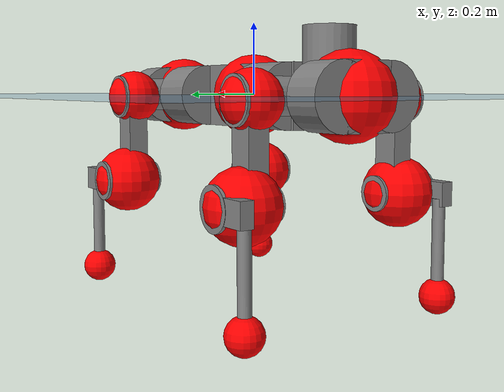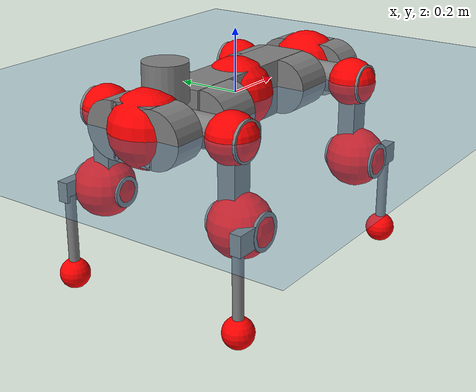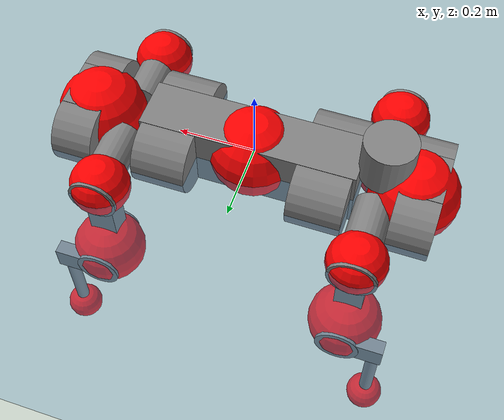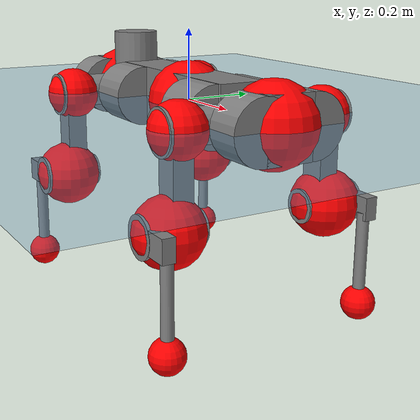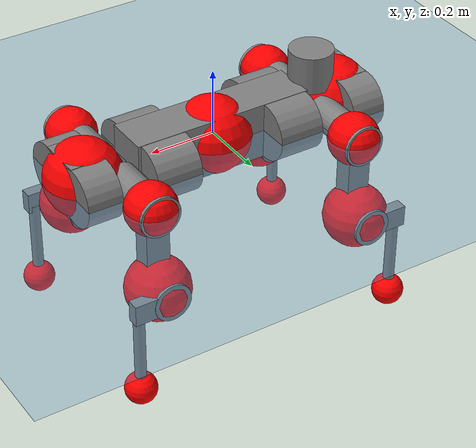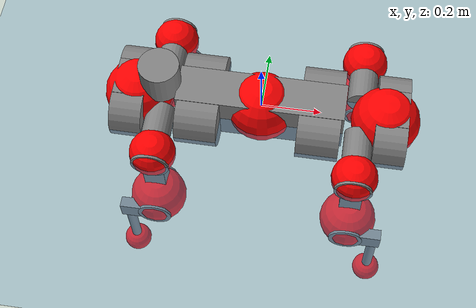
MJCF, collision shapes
<mujoco model="anymal_c">
  <compiler angle="radian" assetdir="assets" balanceinertia="true" inertiafromgeom="false"/>

  <option timestep="0.005" density="1.2" viscosity="2e-05"/>

  <size nkey="1"/>

  <visual>
    <quality shadowsize="8192"/>
    <map shadowclip="0.5"/>
  </visual>

  <default>
    <default class="/">
      <material specular="0" shininess="0.25"/>
      <geom contype="0" conaffinity="0" group="1" solref="-1000 -80"/>
      <site size="0.01 0.005 0.005" group="5"/>
      <general forcelimited="true" forcerange="-80 80" biastype="affine" gainprm="80" biasprm="0 -80 -2"/>
      <default class="anymal_c">
        <joint armature="0.01" damping="0.01" frictionloss="0.1"/>
        <default class="visual">
          <geom type="mesh" group="2"/>
          <default class="visual_zflip"/>
        </default>
        <default class="collision">
          <geom type="cylinder" group="3"/>
          <default class="foot">
            <geom size="0.03 0 0" type="sphere" condim="6" priority="1" friction="0.8 0.02 0.01" solimp="0.015 1 0.03"/>
          </default>
        </default>
      </default>
      <default class="reward_collision_sphere">
        <geom group="5" rgba="1 0 0 1"/>
      </default>
    </default>
  </default>

  <asset>
    <texture type="skybox" colorspace="auto" name="//unnamed_texture_0" builtin="gradient" rgb1="0.95 0.95 0.95" rgb2="0.95 0.95 0.95" width="100" height="600"/>
    <texture type="2d" colorspace="auto" name="texplane" builtin="checker" rgb1="0.345 0.575 0.748" rgb2="0.345 0.575 0.748" markrgb="1 1 1" width="512" height="512"/>
    <texture type="2d" colorspace="linear" name="base" file="base.png"/>
    <texture type="2d" colorspace="linear" name="top_shell" file="top_shell.png"/>
    <texture type="2d" colorspace="linear" name="bottom_shell" file="bottom_shell.png"/>
    <texture type="2d" colorspace="linear" name="remote" file="remote.png"/>
    <texture type="2d" colorspace="linear" name="hatch" file="hatch.png"/>
    <texture type="2d" colorspace="linear" name="handle" file="handle.png"/>
    <texture type="2d" colorspace="linear" name="face" file="face.png"/>
    <texture type="2d" colorspace="linear" name="battery" file="battery.png"/>
    <texture type="2d" colorspace="linear" name="lidar_cage" file="lidar_cage.png"/>
    <texture type="2d" colorspace="linear" name="depth_camera" file="depth_camera.png"/>
    <texture type="2d" colorspace="linear" name="wide_angle_camera" file="wide_angle_camera.png"/>
    <texture type="2d" colorspace="linear" name="lidar" file="lidar.png"/>
    <texture type="2d" colorspace="linear" name="drive" file="drive.png"/>
    <texture type="2d" colorspace="linear" name="hip_l" file="hip_l.png"/>
    <texture type="2d" colorspace="linear" name="shank_l" file="shank_l.png"/>
    <texture type="2d" colorspace="linear" name="foot" file="foot.png"/>
    <texture type="2d" colorspace="linear" name="thigh" file="thigh.png"/>
    <texture type="2d" colorspace="linear" name="shank_r" file="shank_r.png"/>
    <texture type="2d" colorspace="linear" name="hip_r" file="hip_r.png"/>
    <material name="MatPlane" class="/" texture="texplane" texuniform="true" texrepeat="2 2" specular="0.9" shininess="0.5"/>
    <material name="black_plastic" class="/" rgba="0.007 0.007 0.007 1"/>
    <material name="green" class="/" rgba="0.052 0.178 0.033 1"/>
    <material name="red" class="/" rgba="0.178 0.006 0.005 1"/>
    <material name="yellow" class="/" rgba="0.178 0.119 0.006 1"/>
    <material name="lwl" class="/" rgba="0.8 0.8 0.8 1"/>
    <material name="base" class="/" texture="base"/>
    <material name="top_shell" class="/" texture="top_shell"/>
    <material name="bottom_shell" class="/" texture="bottom_shell"/>
    <material name="hip_l" class="/" texture="hip_l"/>
    <material name="thigh" class="/" texture="thigh"/>
    <material name="shank_l" class="/" texture="shank_l"/>
    <material name="foot" class="/" texture="foot"/>
    <material name="hip_r" class="/" texture="hip_r"/>
    <material name="shank" class="/" texture="shank_r"/>
    <material name="hatch" class="/" texture="hatch"/>
    <material name="remote" class="/" texture="remote"/>
    <material name="handle" class="/" texture="handle"/>
    <material name="face" class="/" texture="face"/>
    <material name="depth_camera" class="/" texture="depth_camera"/>
    <material name="wide_angle_camera" class="/" texture="wide_angle_camera"/>
    <material name="battery" class="/" texture="battery"/>
    <material name="lidar_cage" class="/" texture="lidar_cage"/>
    <material name="lidar" class="/" texture="lidar"/>
    <material name="drive" class="/" texture="drive"/>
    <mesh name="base_0" class="/" file="base_0.obj"/>
    <mesh name="base_1" class="/" file="base_1.obj"/>
    <mesh name="base_2" class="/" file="base_2.obj"/>
    <mesh name="base_3" class="/" file="base_3.obj"/>
    <mesh name="base_4" class="/" file="base_4.obj"/>
    <mesh name="base_5" class="/" file="base_5.obj"/>
    <mesh name="top_shell" class="/" file="top_shell.obj"/>
    <mesh name="bottom_shell" class="/" file="bottom_shell.obj"/>
    <mesh name="remote" class="/" file="remote.obj"/>
    <mesh name="handle" class="/" file="handle.obj"/>
    <mesh name="face" class="/" file="face.obj"/>
    <mesh name="wide_angle_camera" class="/" file="wide_angle_camera.obj"/>
    <mesh name="depth_camera" class="/" file="depth_camera.obj"/>
    <mesh name="battery" class="/" file="battery.obj"/>
    <mesh name="lidar_cage" class="/" file="lidar_cage.obj"/>
    <mesh name="lidar" class="/" file="lidar.obj"/>
    <mesh name="drive" class="/" file="drive.obj"/>
    <mesh name="hip_l" class="/" file="hip_l.obj"/>
    <mesh name="thigh" class="/" file="thigh.obj"/>
    <mesh name="shank_l" class="/" file="shank_l.obj"/>
    <mesh name="foot" class="/" file="foot.obj"/>
    <mesh name="hip_r" class="/" file="hip_r.obj"/>
    <mesh name="hatch" class="/" file="hatch.obj"/>
    <mesh name="shank_r" class="/" file="shank_r.obj"/>
  </asset>

  <worldbody>
    <geom name="floor" class="/" size="100 100 0.125" type="plane" group="0" material="MatPlane"/>
    <light name="toplight_shadow" class="/" pos="0 0 5" dir="0.0990148 0.0990148 -0.990148" type="directional" ambient="0.04 0.04 0.04" diffuse="0.55 0.55 0.55" specular="0.12 0.12 0.12"/>
    <light name="toplight_fill" class="/" pos="0 0 5" dir="0.0990148 0.0990148 -0.990148" type="directional" castshadow="false" ambient="0.04 0.04 0.04" diffuse="0.3 0.3 0.3" specular="0.08 0.08 0.08"/>
    <body name="trunk" childclass="anymal_c" pos="0.00115636 -0.00169237 -0.00271516" quat="1 0.000295365 5.61289e-05 0.000233416">
      <inertial pos="0.00404788 -0.000401516 0.0421432" quat="0.511192 0.494557 0.494695 0.499372" mass="17.5342" diaginertia="0.413114 0.92656 0.112107"/>
      <joint name="//unnamed_joint_0" type="free" armature="0" damping="0" frictionloss="0"/>
      <geom name="//unnamed_geom_1" class="visual" material="green" mesh="base_0"/>
      <geom name="//unnamed_geom_2" class="visual" material="yellow" mesh="base_1"/>
      <geom name="//unnamed_geom_3" class="visual" material="red" mesh="base_2"/>
      <geom name="//unnamed_geom_4" class="visual" material="black_plastic" mesh="base_3"/>
      <geom name="//unnamed_geom_5" class="visual" material="lwl" mesh="base_4"/>
      <geom name="//unnamed_geom_6" class="visual" material="base" mesh="base_5"/>
      <geom name="trunk_1" class="collision" size="0.277771 0.0670483 0.0862049" type="box"/>
      <geom name="trunk_2" class="collision" size="0.0862049 0.0694429" pos="0.199974 0.075623 0" quat="0.707107 0 0.707107 0"/>
      <geom name="trunk_3" class="collision" size="0.0862049 0.0694429" pos="-0.199974 0.075623 0" quat="0.707107 0 0.707107 0"/>
      <geom name="trunk_4" class="collision" size="0.0862049 0.0694429" pos="0.199974 -0.075623 0" quat="0.707107 0 0.707107 0"/>
      <geom name="trunk_5" class="collision" size="0.0862049 0.0694429" pos="-0.199974 -0.075623 0" quat="0.707107 0 0.707107 0"/>
      <geom name="//unnamed_geom_12" class="visual" material="top_shell" mesh="top_shell"/>
      <geom name="//unnamed_geom_13" class="visual" material="bottom_shell" mesh="bottom_shell"/>
      <geom name="//unnamed_geom_14" class="visual" material="remote" mesh="remote"/>
      <geom name="//unnamed_geom_15" class="visual" material="handle" mesh="handle"/>
      <geom name="//unnamed_geom_16" class="visual" pos="0.3811 0 0" quat="1 0 0 0" material="face" mesh="face"/>
      <geom name="trunk_6" class="collision" size="0.0526808 0.0670483 0.0862049" pos="0.431668 0 0" type="box"/>
      <geom name="//unnamed_geom_18" class="collision" size="0.0862049 0.0526808" pos="0.431668 0.075623 0" quat="0.707107 0 0.707107 0"/>
      <geom name="//unnamed_geom_19" class="collision" size="0.0862049 0.0526808" pos="0.431668 -0.075623 0" quat="0.707107 0 0.707107 0"/>
      <geom name="//unnamed_geom_20" class="visual" pos="0.424448 0 -0.0251664" quat="0.965926 0 0.258819 0" material="depth_camera" mesh="depth_camera"/>
      <geom name="//unnamed_geom_21" class="visual" pos="0.471662 0 0.01308" material="wide_angle_camera" mesh="wide_angle_camera"/>
      <geom name="//unnamed_geom_22" class="visual_zflip" pos="-0.3811 0 0" quat="0 0 0 1" material="face" mesh="face"/>
      <geom name="trunk_7" class="collision" size="0.0526808 0.0670483 0.0862049" pos="-0.431668 0 0" quat="0 0 0 1" type="box"/>
      <geom name="//unnamed_geom_24" class="collision" size="0.0862049 0.0526808" pos="-0.431668 -0.075623 0" quat="0 -0.707107 0 0.707107"/>
      <geom name="//unnamed_geom_25" class="collision" size="0.0862049 0.0526808" pos="-0.431668 0.075623 0" quat="0 -0.707107 0 0.707107"/>
      <geom name="//unnamed_geom_26" class="visual" pos="-0.424448 0 -0.0251664" quat="0 -0.258819 0 0.965926" material="depth_camera" mesh="depth_camera"/>
      <geom name="//unnamed_geom_27" class="visual_zflip" pos="-0.471662 0 0.01308" quat="0 0 0 1" material="wide_angle_camera" mesh="wide_angle_camera"/>
      <geom name="//unnamed_geom_28" class="visual" material="battery" mesh="battery"/>
      <geom name="//unnamed_geom_29" class="visual" pos="0 0.0847114 0.0257295" quat="0.683013 -0.183013 0.183013 0.683013" material="depth_camera" mesh="depth_camera"/>
      <geom name="//unnamed_geom_30" class="visual" pos="0 -0.0847114 0.0257295" quat="0.683013 0.183013 0.183013 -0.683013" material="depth_camera" mesh="depth_camera"/>
      <geom name="//unnamed_geom_31" class="visual" pos="-0.334669 0 0.0642206" quat="1 0 0 0" material="lidar_cage" mesh="lidar_cage"/>
      <geom name="trunk_8" class="collision" size="0.0670483 0.05747" pos="-0.334669 0 0.116646"/>
      <geom name="//unnamed_geom_33" class="visual" pos="-0.334669 6.32165e-05 0.124247" quat="0.707107 0 0 -0.707107" material="lidar" mesh="lidar"/>
      <geom name="//unnamed_geom_34" class="visual" pos="0.275734 0.112281 3.56349e-09" quat="0.258819 0.965926 0 0" material="drive" mesh="drive"/>
      <geom name="//unnamed_geom_35" class="visual" pos="0.275734 -0.112281 -3.56349e-09" quat="0.258819 -0.965926 0 0" material="drive" mesh="drive"/>
      <geom name="//unnamed_geom_36" class="visual" pos="-0.275734 0.112281 -3.56349e-09" quat="0 0 0.965926 -0.258819" material="drive" mesh="drive"/>
      <geom name="//unnamed_geom_37" class="visual" pos="-0.275734 -0.112281 3.56349e-09" quat="0 0 -0.965926 -0.258819" material="drive" mesh="drive"/>
      <geom name="//unnamed_geom_38" class="visual" pos="0.106653 0 0.0637838" quat="1 0 0 0" material="hatch" mesh="hatch"/>
      <geom name="//unnamed_geom_39" class="reward_collision_sphere" size="0.11494"/>
      <geom name="//unnamed_geom_40" class="reward_collision_sphere" size="0.11494" pos="0.413739 0 0"/>
      <geom name="//unnamed_geom_41" class="reward_collision_sphere" size="0.11494" pos="-0.413739 0 0"/>
      <site name="imu" pos="0.224021 0.022351 0.0291399" size="0.00957833"/>
      <camera name="track" pos="0 -2.16066 0" quat="0.707107 0.707107 0 0" mode="trackcom"/>
      <camera name="ego_camera" pos="0.413739 0 -0.03495" quat="-0.5 -0.5 0.5 0.5"/>
      <body name="LF_HIP" pos="0.273858 0.110497 0.00295373" quat="0.259122 0.965844 -0.000278145 0.000539763">
        <inertial pos="0.0539925 -0.018823 -0.00961432" quat="-0.125208 0.710051 -0.1372 0.679211" mass="2.42691" diaginertia="0.00380137 0.00730646 0.00173022"/>
        <joint name="LF_HAA" pos="0 0 0" axis="0.99994 0.0101603 0.00421268" range="-0.7082 0.486446" armature="0.0101613" damping="0" frictionloss="0.10883"/>
        <geom name="//unnamed_geom_42" class="visual" pos="0 0.000209624 -3.44306e-05" quat="0.258819 -0.965926 0 0" material="hip_l" mesh="hip_l"/>
        <geom name="//unnamed_geom_43" class="visual" pos="0.0550732 -0.0687782 -0.0381811" quat="0.183013 -0.683013 0.683013 0.183013" material="drive" mesh="drive"/>
        <geom name="//unnamed_geom_44" class="collision" size="0.0478916 0.0670483" pos="0.0550732 -0.0129205 -0.00603324" quat="-0.353553 -0.612372 0.612372 -0.353553"/>
        <body name="LF_THIGH" pos="0.0537649 -0.0774195 -0.0349376" quat="0.18338 -0.682978 0.683054 0.18262">
          <inertial pos="0.0272493 -0.00039019 -0.214845" quat="0.99297 -0.00440806 -0.0810097 0.0861922" mass="2.61644" diaginertia="0.0198103 0.0450264 0.00205059"/>
          <joint name="LF_HFE" pos="0 0 0" axis="0.999922 -0.0123682 0.00185183" range="-3.15561 3.16277" armature="0.0101446" damping="0.0129465" frictionloss="0.108508"/>
          <geom name="//unnamed_geom_45" class="visual" pos="-0.00320144 -5.04472e-06 0" quat="0.707107 0 0 -0.707107" material="thigh" mesh="thigh"/>
          <geom name="//unnamed_geom_46" class="collision" size="0.0622591 0.0383133" pos="0.0367768 0 0" quat="0.5 0.5 -0.5 -0.5"/>
          <geom name="//unnamed_geom_47" class="collision" size="0.0359187 0.028735 0.135355" pos="0.0275826 0 -0.123473" quat="0.707107 0 0 -0.707107" type="box"/>
          <geom name="//unnamed_geom_48" class="visual" pos="0.0922178 0 -0.249019" quat="1 0 0 0" material="drive" mesh="drive"/>
          <geom name="//unnamed_geom_49" class="collision" size="0.0478916 0.0670483" pos="0.0278584 0 -0.249019" quat="0.707107 0 0.707107 0"/>
          <geom name="//unnamed_geom_50" class="reward_collision_sphere" size="0.0766266" pos="0.0229855 0 0"/>
          <body name="LF_SHANK" pos="0.093939 0.000559103 -0.249231" quat="1 0.000921061 -0.00015529 -0.000284934">
            <inertial pos="0.00732701 -0.0635981 -0.0718177" quat="0.992933 -0.115901 -0.00112896 -0.0254938" mass="0.530798" diaginertia="0.00644954 0.0140063 0.000554844"/>
            <joint name="LF_KFE" pos="0 0 0" axis="0.999927 -0.0079697 -0.00908087" stiffness="0.000630306" range="-3.13599 3.13088" armature="0.00826583" damping="0.00983159" frictionloss="0.0923098"/>
            <geom name="//unnamed_geom_51" class="visual" pos="-0.00104392 -0.00556623 0" quat="0.707107 0 0 -0.707107" material="shank_l" mesh="shank_l"/>
            <geom name="LF_kfe_act" class="collision" size="0.05747 0.0191567" pos="0.0183884 0 0" quat="0.5 0.5 -0.5 -0.5"/>
            <geom name="//unnamed_geom_53" class="collision" size="0.0550744 0.0323269 0.0181988" pos="0.0183884 -0.0621178 0" quat="0.5 0.5 -0.5 -0.5" type="box"/>
            <geom name="//unnamed_geom_54" class="visual" pos="0.0119987 -0.0968086 -0.295301" quat="0.382683 0 0 -0.92388" material="foot" mesh="foot"/>
            <geom name="LF_calf" class="collision" size="0.0167621 0.135296" pos="0.0119984 -0.0950148 -0.147651" quat="0.707107 0 0 -0.707107"/>
            <geom name="LF_foot" class="foot" size="0.0344256" pos="0.0119984 -0.0950148 -0.275642" quat="0.707107 0 0 -0.707107"/>
            <geom name="//unnamed_geom_57" class="reward_collision_sphere" size="0.0957833" pos="-0.045971 0 0"/>
            <geom name="//unnamed_geom_58" class="reward_collision_sphere" size="0.0478916" pos="0.0119984 -0.0950148 -0.275642"/>
            <site name="LF_foot" class="foot" pos="0.0119984 -0.0950148 -0.275642" quat="0.707107 0 0 -0.707107" size="0.00957833"/>
          </body>
        </body>
      </body>
      <body name="RF_HIP" pos="0.276688 -0.112697 0.000868231" quat="0.257921 -0.966166 -0.000955141 0.000427808">
        <inertial pos="0.0531004 0.0194634 -0.00731562" quat="0.138906 0.678856 0.129095 0.709362" mass="2.40802" diaginertia="0.00388564 0.00723416 0.00166665"/>
        <joint name="RF_HAA" pos="0 0 0" axis="0.999998 0.00109452 -0.0016104" range="-0.443844 0.702447" armature="0.0103078" damping="0.00993709" frictionloss="0.0894901"/>
        <geom name="//unnamed_geom_59" class="visual" pos="0 -0.000209622 -3.44305e-05" quat="0.258819 0.965926 0 0" material="hip_r" mesh="hip_r"/>
        <geom name="//unnamed_geom_60" class="visual" pos="0.0550733 0.0687782 -0.0381811" quat="0.183013 0.683013 0.683013 -0.183013" material="drive" mesh="drive"/>
        <geom name="//unnamed_geom_61" class="collision" size="0.0478916 0.0670483" pos="0.0550732 0.0129205 -0.00603324" quat="-0.353553 0.612372 0.612372 0.353553"/>
        <body name="RF_THIGH" pos="0.0560222 0.0771586 -0.0369595" quat="0.182988 0.683169 0.68295 -0.182687">
          <inertial pos="0.0268435 0.00167569 -0.216828" quat="0.993109 -0.00698963 -0.0794422 0.0858796" mass="2.67381" diaginertia="0.0190822 0.0410694 0.00203841"/>
          <joint name="RF_HFE" pos="0 0 0" axis="0.999924 0.00371774 -0.0117733" stiffness="0.00296628" range="-3.19275 3.08743" armature="0.00954318" damping="0.00916587" frictionloss="0.108872"/>
          <geom name="//unnamed_geom_62" class="visual" pos="-0.00320144 -5.04472e-06 0" quat="0.707107 0 0 -0.707107" material="thigh" mesh="thigh"/>
          <geom name="//unnamed_geom_63" class="collision" size="0.0622591 0.0383133" pos="0.0367768 0 0" quat="0.5 0.5 0.5 0.5"/>
          <geom name="//unnamed_geom_64" class="collision" size="0.0359187 0.028735 0.135355" pos="0.0275826 0 -0.123473" quat="0.707107 0 0 0.707107" type="box"/>
          <geom name="//unnamed_geom_65" class="visual" pos="0.0922178 0 -0.249019" quat="1 0 0 0" material="drive" mesh="drive"/>
          <geom name="//unnamed_geom_66" class="collision" size="0.0478916 0.0670483" pos="0.0278584 0 -0.249019" quat="0.707107 0 0.707107 0"/>
          <geom name="//unnamed_geom_67" class="reward_collision_sphere" size="0.0766266" pos="0.0229855 0 0"/>
          <body name="RF_SHANK" pos="0.0945791 0.000369113 -0.249985" quat="1 -1.01165e-05 -1.09466e-05 -1.60261e-05">
            <inertial pos="0.00778127 0.0657546 -0.0725307" quat="0.992814 0.117218 0.00214716 0.0239874" mass="0.535535" diaginertia="0.00675639 0.0134397 0.000568713"/>
            <joint name="RF_KFE" pos="0 0 0" axis="0.999998 0.000352433 -0.00172198" range="-3.1609 3.13025" armature="0.00932321" damping="0.0210525" frictionloss="0.105845"/>
            <geom name="//unnamed_geom_68" class="visual" pos="-0.00104391 0.00556622 0" quat="0.707107 0 0 0.707107" material="shank" mesh="shank_r"/>
            <geom name="RF_kfe_act" class="collision" size="0.05747 0.0191567" pos="0.0183884 0 0" quat="0.5 0.5 0.5 0.5"/>
            <geom name="//unnamed_geom_70" class="collision" size="0.0550744 0.0323269 0.0181988" pos="0.0183884 0.0621178 0" quat="0.5 0.5 0.5 0.5" type="box"/>
            <geom name="//unnamed_geom_71" class="visual" pos="0.0119982 0.0968086 -0.295301" quat="0.382683 0 0 0.92388" material="foot" mesh="foot"/>
            <geom name="RF_calf" class="collision" size="0.0167621 0.135296" pos="0.0119984 0.0950148 -0.147651" quat="0.707107 0 0 0.707107"/>
            <geom name="RF_foot" class="foot" size="0.0285371" pos="0.0119984 0.0950148 -0.275642" quat="0.707107 0 0 0.707107"/>
            <geom name="//unnamed_geom_74" class="reward_collision_sphere" size="0.0957833" pos="-0.045971 0 0"/>
            <geom name="//unnamed_geom_75" class="reward_collision_sphere" size="0.0478916" pos="0.0119984 0.0950148 -0.275642"/>
            <site name="RF_foot" class="foot" pos="0.0119984 0.0950148 -0.275642" quat="0.707107 0 0 0.707107" size="0.00957833"/>
          </body>
        </body>
      </body>
      <body name="LH_HIP" pos="-0.275719 0.114756 0.00233378" quat="-0.000643411 -0.000572945 0.96567 -0.259771">
        <inertial pos="0.0509834 0.014413 -0.00733554" quat="0.134955 0.679216 0.128216 0.709939" mass="2.47645" diaginertia="0.0038059 0.0073018 0.00161546"/>
        <joint name="LH_HAA" pos="0 0 0" axis="0.999986 0.00416149 -0.00340197" stiffness="0.00701028" range="-0.524266 0.738521" armature="0.00966188" damping="0.010294" frictionloss="0.108792"/>
        <geom name="//unnamed_geom_76" class="visual" pos="0 -0.000209622 -3.44305e-05" quat="-0.258819 -0.965926 0 0" material="hip_r" mesh="hip_r"/>
        <geom name="//unnamed_geom_77" class="visual" pos="0.0550733 0.0687782 -0.0381811" quat="0.183013 0.683013 0.683013 -0.183013" material="drive" mesh="drive"/>
        <geom name="//unnamed_geom_78" class="collision" size="0.0478916 0.0670483" pos="0.0550732 0.0129205 -0.00603324" quat="-0.353553 0.612372 0.612372 0.353553"/>
        <body name="LH_THIGH" pos="0.0555299 0.0813571 -0.035362" quat="0.182802 0.683074 0.683107 -0.182641">
          <inertial pos="0.0292468 -0.00140667 -0.215679" quat="0.992792 -0.0049176 -0.0807112 0.0884633" mass="2.67921" diaginertia="0.0204316 0.0433787 0.00219697"/>
          <joint name="LH_HFE" pos="0 0 0" axis="0.999956 0.0053252 -0.00765899" range="-3.16156 3.15685" armature="0.00875455" damping="0.0124494" frictionloss="0.0831966"/>
          <geom name="//unnamed_geom_79" class="visual" pos="-0.00320144 -5.04472e-06 0" quat="0.707107 0 0 -0.707107" material="thigh" mesh="thigh"/>
          <geom name="//unnamed_geom_80" class="collision" size="0.0622591 0.0383133" pos="0.0367768 0 0" quat="0.5 0.5 -0.5 -0.5"/>
          <geom name="//unnamed_geom_81" class="collision" size="0.0359187 0.028735 0.135355" pos="0.0275826 0 -0.123473" quat="0.707107 0 0 -0.707107" type="box"/>
          <geom name="//unnamed_geom_82" class="visual" pos="0.0922178 0 -0.249019" quat="1 0 0 0" material="drive" mesh="drive"/>
          <geom name="//unnamed_geom_83" class="collision" size="0.0478916 0.0670483" pos="0.0278584 0 -0.249019" quat="0.707107 0 0.707107 0"/>
          <geom name="//unnamed_geom_84" class="reward_collision_sphere" size="0.0766266" pos="0.0229855 0 0"/>
          <body name="LH_SHANK" pos="0.0951068 -0.000147448 -0.247063" quat="1 9.51813e-05 0.000289459 -0.000105399">
            <inertial pos="0.00500726 0.0657836 -0.0680242" quat="0.992824 0.116675 0.000957435 0.0262065" mass="0.519956" diaginertia="0.00664851 0.0133659 0.000571246"/>
            <joint name="LH_KFE" pos="0 0 0" axis="0.999963 -0.00853764 0.000831834" range="-3.19032 3.14039" armature="0.00841058" damping="0.0112509" frictionloss="0.100377"/>
            <geom name="//unnamed_geom_85" class="visual" pos="-0.00104391 0.00556622 0" quat="-0.707107 0 0 -0.707107" material="shank" mesh="shank_r"/>
            <geom name="LH_kfe_act" class="collision" size="0.05747 0.0191567" pos="0.0183884 0 0" quat="0.5 0.5 -0.5 -0.5"/>
            <geom name="//unnamed_geom_87" class="collision" size="0.0550744 0.0323269 0.0181988" pos="0.0183884 0.0621178 0" quat="0.5 0.5 -0.5 -0.5" type="box"/>
            <geom name="//unnamed_geom_88" class="visual" pos="0.0119982 0.0968086 -0.295301" quat="-0.382683 0 0 -0.92388" material="foot" mesh="foot"/>
            <geom name="LH_calf" class="collision" size="0.0167621 0.135296" pos="0.0119984 0.0950148 -0.147651" quat="0.707107 0 0 -0.707107"/>
            <geom name="LH_foot" class="foot" size="0.0311887" pos="0.0119984 0.0950148 -0.275642" quat="0.707107 0 0 -0.707107"/>
            <geom name="//unnamed_geom_91" class="reward_collision_sphere" size="0.0957833" pos="-0.045971 0 0"/>
            <geom name="//unnamed_geom_92" class="reward_collision_sphere" size="0.0478916" pos="0.0119984 0.0950148 -0.275642"/>
            <site name="LH_foot" class="foot" pos="0.0119984 0.0950148 -0.275642" quat="0.707107 0 0 -0.707107" size="0.00957833"/>
          </body>
        </body>
      </body>
      <body name="RH_HIP" pos="-0.273922 -0.110937 0.000665785" quat="-0.000242877 0.000743599 -0.966112 -0.258121">
        <inertial pos="0.0523095 -0.0156427 -0.00759565" quat="-0.127539 0.709127 -0.136884 0.679806" mass="2.46667" diaginertia="0.00400827 0.00751585 0.00163745"/>
        <joint name="RH_HAA" pos="0 0 0" axis="0.999994 -0.0031853 0.00133308" range="-0.703046 0.476808" armature="0.0090644" damping="0" frictionloss="0.0951328"/>
        <geom name="//unnamed_geom_93" class="visual" pos="0 0.000209624 -3.44306e-05" quat="-0.258819 0.965926 0 0" material="hip_l" mesh="hip_l"/>
        <geom name="//unnamed_geom_94" class="visual" pos="0.0550732 -0.0687782 -0.0381811" quat="-0.183013 0.683013 -0.683013 -0.183013" material="drive" mesh="drive"/>
        <geom name="//unnamed_geom_95" class="collision" size="0.0478916 0.0670483" pos="0.0550732 -0.0129205 -0.00603324" quat="0.353553 0.612372 -0.612372 0.353553"/>
        <body name="RH_THIGH" pos="0.0541558 -0.0790458 -0.0367424" quat="-0.184463 0.682737 -0.682743 -0.183589">
          <inertial pos="0.0281938 -0.00272637 -0.215067" quat="0.993264 -0.00514182 -0.0800079 0.0836644" mass="2.52014" diaginertia="0.0185485 0.0426958 0.00206846"/>
          <joint name="RH_HFE" pos="0 0 0" axis="0.999953 0.000996685 0.00962985" range="-3.13234 3.18662" armature="0.0107068" damping="0" frictionloss="0.0853084"/>
          <geom name="//unnamed_geom_96" class="visual" pos="-0.00320144 -5.04472e-06 0" quat="0.707107 0 0 -0.707107" material="thigh" mesh="thigh"/>
          <geom name="//unnamed_geom_97" class="collision" size="0.0622591 0.0383133" pos="0.0367768 0 0" quat="0.5 0.5 0.5 0.5"/>
          <geom name="//unnamed_geom_98" class="collision" size="0.0359187 0.028735 0.135355" pos="0.0275826 0 -0.123473" quat="0.707107 0 0 0.707107" type="box"/>
          <geom name="//unnamed_geom_99" class="visual" pos="0.0922178 0 -0.249019" quat="1 0 0 0" material="drive" mesh="drive"/>
          <geom name="//unnamed_geom_100" class="collision" size="0.0478916 0.0670483" pos="0.0278584 0 -0.249019" quat="0.707107 0 0.707107 0"/>
          <geom name="//unnamed_geom_101" class="reward_collision_sphere" size="0.0766266" pos="0.0229855 0 0"/>
          <body name="RH_SHANK" pos="0.0945742 0.00166158 -0.249909" quat="1 0.000252483 -0.000521234 0.000156893">
            <inertial pos="0.00283006 -0.0662436 -0.0680777" quat="0.991865 -0.122828 0.00826447 -0.032393" mass="0.514061" diaginertia="0.00701006 0.0135807 0.000594195"/>
            <joint name="RH_KFE" pos="0 0 0" axis="0.999801 -0.00934721 -0.0176467" range="-3.10597 3.09002" armature="0.0090111" damping="0.0121619" frictionloss="0.106732"/>
            <geom name="//unnamed_geom_102" class="visual" pos="-0.00104392 -0.00556623 0" quat="0.707107 0 0 -0.707107" material="shank_l" mesh="shank_l"/>
            <geom name="RH_kfe_act" class="collision" size="0.05747 0.0191567" pos="0.0183884 0 0" quat="0.5 0.5 0.5 0.5"/>
            <geom name="//unnamed_geom_104" class="collision" size="0.0550744 0.0323269 0.0181988" pos="0.0183884 -0.0621178 0" quat="0.5 0.5 0.5 0.5" type="box"/>
            <geom name="//unnamed_geom_105" class="visual" pos="0.0119987 -0.0968086 -0.295301" quat="0.382683 0 0 -0.92388" material="foot" mesh="foot"/>
            <geom name="RH_calf" class="collision" size="0.0167621 0.135296" pos="0.0119984 -0.0950148 -0.147651" quat="0.707107 0 0 0.707107"/>
            <geom name="RH_foot" class="foot" size="0.0236666" pos="0.0119984 -0.0950148 -0.275642" quat="0.707107 0 0 0.707107"/>
            <geom name="//unnamed_geom_108" class="reward_collision_sphere" size="0.0957833" pos="-0.045971 0 0"/>
            <geom name="//unnamed_geom_109" class="reward_collision_sphere" size="0.0478916" pos="0.0119984 -0.0950148 -0.275642"/>
            <site name="RH_foot" class="foot" pos="0.0119984 -0.0950148 -0.275642" quat="0.707107 0 0 0.707107" size="0.00957833"/>
          </body>
        </body>
      </body>
    </body>
  </worldbody>

  <contact>
    <pair class="/" geom1="floor" geom2="LF_foot" name="//unnamed_contact_0"/>
    <pair class="/" geom1="floor" geom2="RF_foot" name="//unnamed_contact_1"/>
    <pair class="/" geom1="floor" geom2="LH_foot" name="//unnamed_contact_2"/>
    <pair class="/" geom1="floor" geom2="RH_foot" name="//unnamed_contact_3"/>
  </contact>

  <actuator>
    <general name="LF_HAA" class="/" joint="LF_HAA" forcerange="-79.2397 79.2397" gainprm="76.8008" biasprm="0 -76.8008 -2.09035"/>
    <general name="LF_HFE" class="/" joint="LF_HFE" forcerange="-69.2882 69.2882" gainprm="76.8008" biasprm="0 -76.8008 -2.09035"/>
    <general name="LF_KFE" class="/" joint="LF_KFE" forcerange="-78.628 78.628" gainprm="76.8008" biasprm="0 -76.8008 -2.09035"/>
    <general name="RF_HAA" class="/" joint="RF_HAA" forcerange="-70.9987 70.9987" gainprm="76.8008" biasprm="0 -76.8008 -2.09035"/>
    <general name="RF_HFE" class="/" joint="RF_HFE" forcerange="-76.4621 76.4621" gainprm="76.8008" biasprm="0 -76.8008 -2.09035"/>
    <general name="RF_KFE" class="/" joint="RF_KFE" forcerange="-72.8197 72.8197" gainprm="76.8008" biasprm="0 -76.8008 -2.09035"/>
    <general name="LH_HAA" class="/" joint="LH_HAA" forcerange="-77.5566 77.5566" gainprm="76.8008" biasprm="0 -76.8008 -2.09035"/>
    <general name="LH_HFE" class="/" joint="LH_HFE" forcerange="-77.1634 77.1634" gainprm="76.8008" biasprm="0 -76.8008 -2.09035"/>
    <general name="LH_KFE" class="/" joint="LH_KFE" forcerange="-76.3493 76.3493" gainprm="76.8008" biasprm="0 -76.8008 -2.09035"/>
    <general name="RH_HAA" class="/" joint="RH_HAA" forcerange="-79.6008 79.6008" gainprm="76.8008" biasprm="0 -76.8008 -2.09035"/>
    <general name="RH_HFE" class="/" joint="RH_HFE" forcerange="-70.3446 70.3446" gainprm="76.8008" biasprm="0 -76.8008 -2.09035"/>
    <general name="RH_KFE" class="/" joint="RH_KFE" forcerange="-75.5169 75.5169" gainprm="76.8008" biasprm="0 -76.8008 -2.09035"/>
  </actuator>

  <sensor>
    <gyro site="imu" name="imu_angular_velocity"/>
    <velocimeter site="imu" name="imu_linear_velocity"/>
    <framelinvel objtype="site" objname="LF_foot" name="LF_foot_global_linear_velocity"/>
    <framelinvel objtype="site" objname="RF_foot" name="RF_foot_global_linear_velocity"/>
    <framelinvel objtype="site" objname="LH_foot" name="LH_foot_global_linear_velocity"/>
    <framelinvel objtype="site" objname="RH_foot" name="RH_foot_global_linear_velocity"/>
  </sensor>

  <keyframe>
    <key name="home" qpos="0 0 0.55 1 0 0 0 0 0.4 -0.8 0 -0.4 0.8 0 -0.4 0.8 0 0.4 -0.8"/>
  </keyframe>
</mujoco>
